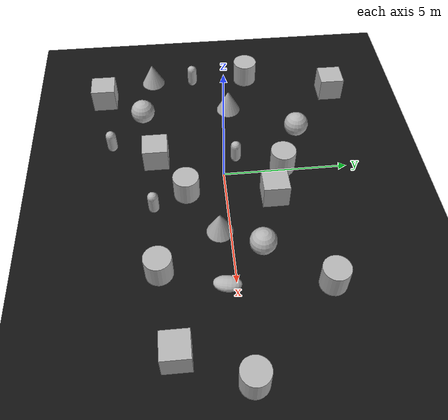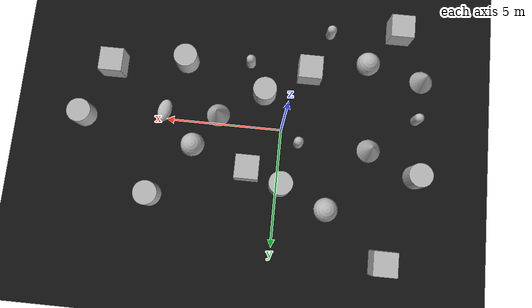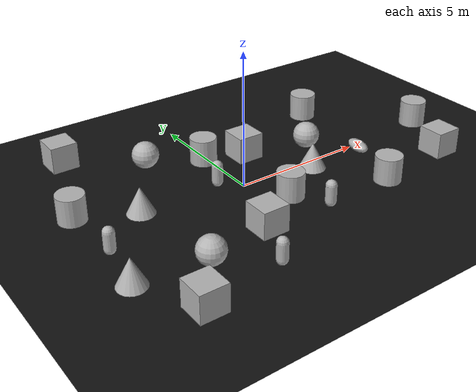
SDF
<sdf version='1.10'>
  <world name='easy'>
    <physics type='ode'>
      <max_step_size>0.0157999999999999997</max_step_size>
      <real_time_factor>2.1</real_time_factor>
      <real_time_update_rate>100</real_time_update_rate>
    </physics>
    <plugin name='gz::sim::systems::Physics' filename='gz-sim-physics-system'/>
    <plugin name='gz::sim::systems::UserCommands' filename='gz-sim-user-commands-system'/>
    <plugin name='gz::sim::systems::SceneBroadcaster' filename='gz-sim-scene-broadcaster-system'/>
    <plugin name='gz::sim::systems::Contact' filename='gz-sim-contact-system'/>
    <gravity>0 0 -9.8000000000000007</gravity>
    <magnetic_field>5.5644999999999998e-06 2.2875799999999999e-05 -4.2388400000000002e-05</magnetic_field>
    <atmosphere type='adiabatic'/>
    <scene>
      <ambient>0.400000006 0.400000006 0.400000006 1</ambient>
      <background>0 0 0 1</background>
      <shadows>true</shadows>

    </scene>
       <model name='ground_plane'>
      <static>true</static>
      <link name='link'>
        <collision name='collision'>
          <geometry>
            <plane>
              <normal>0 0 1</normal>
              <size>100 100</size>
            </plane>
          </geometry>
          <surface>
            <friction>
              <ode>
                <mu>0.6</mu>  <!-- Static friction (resistance to starting motion) -->
                <mu2>0.6</mu2> <!-- Dynamic friction (resistance while sliding) -->
              </ode>
            </friction>
            <bounce/>
            <contact/>
          </surface>
        </collision>
        <visual name='visual'>
          <geometry>
            <plane>
              <normal>0 0 1</normal>
              <size>100 100</size>
            </plane>
          </geometry>
          <material>
            <ambient>0.4 0.40 0.0 1</ambient>
            <diffuse>0.07
             0.07 0.07   1</diffuse>
            <specular>1.20000001e-08 1.20000001e-08 1.20000001e-08 1</specular>
          </material>
        </visual>
        <pose>0 0 0 0 0 0</pose>
        <inertial>
          <pose>0 0 0 0 0 0</pose>
          <mass>1</mass>
          <inertia>
            <ixx>1</ixx>
            <ixy>0</ixy>
            <ixz>0</ixz>
            <iyy>1</iyy>
            <iyz>0</iyz>
            <izz>1</izz>
          </inertia>
        </inertial>
        <enable_wind>true</enable_wind>
      </link>
      <pose>0 0 0 0 0 0</pose>
      <self_collide>false</self_collide>
    </model>

    <model name='box'>
      <pose>1.3079107751180743 1.8474021047232316 0.49999998732407236 1.7146562890227564e-19 -1.506965482464465e-19 2.6301188088606421e-20</pose>
      <link name='box_link'>
        <inertial>
          <inertia>
            <ixx>0.16666</ixx>
            <ixy>0</ixy>
            <ixz>0</ixz>
            <iyy>0.16666</iyy>
            <iyz>0</iyz>
            <izz>0.16666</izz>
          </inertia>
          <mass>1</mass>
          <pose>0 0 0 0 0 0</pose>
        </inertial>
        <collision name='box_collision'>
          <geometry>
            <box>
              <size>1 1 1</size>
            </box>
          </geometry>
          <surface>
            <friction>
              <ode/>
            </friction>
            <bounce/>
            <contact/>
          </surface>
        </collision>
        <visual name='box_visual'>
          <geometry>
            <box>
              <size>1 1 1</size>
            </box>
          </geometry>
          <material>
            <ambient>0.300000012 0.300000012 0.300000012 1</ambient>
            <diffuse>0.699999988 0.699999988 0.699999988 1</diffuse>
            <specular>1 1 1 1</specular>
          </material>
        </visual>
        <pose>0 0 0 0 0 0</pose>
        <enable_wind>false</enable_wind>
      </link>
      <static>false</static>
      <self_collide>false</self_collide>
    </model>
    <model name='sphere'>
      <pose>3.7021215504538665 1.0727905858347333 0.49999998732445367 0 0 0</pose>
      <link name='sphere_link'>
        <inertial>
          <inertia>
            <ixx>0.10000000000000001</ixx>
            <ixy>0</ixy>
            <ixz>0</ixz>
            <iyy>0.10000000000000001</iyy>
            <iyz>0</iyz>
            <izz>0.10000000000000001</izz>
          </inertia>
          <mass>1</mass>
          <pose>0 0 0 0 0 0</pose>
        </inertial>
        <collision name='sphere_collision'>
          <geometry>
            <sphere>
              <radius>0.5</radius>
            </sphere>
          </geometry>
          <surface>
            <friction>
              <ode/>
            </friction>
            <bounce/>
            <contact/>
          </surface>
        </collision>
        <visual name='sphere_visual'>
          <geometry>
            <sphere>
              <radius>0.5</radius>
            </sphere>
          </geometry>
          <material>
            <ambient>0.300000012 0.300000012 0.300000012 1</ambient>
            <diffuse>0.699999988 0.699999988 0.699999988 1</diffuse>
            <specular>1 1 1 1</specular>
          </material>
        </visual>
        <pose>0 0 0 0 0 0</pose>
        <enable_wind>false</enable_wind>
      </link>
      <static>false</static>
      <self_collide>false</self_collide>
    </model>
    <model name='cylinder'>
      <pose>4.3907817020895035 -2.6686401503549764 0.49999911236898065 -2.3291047202423558e-17 4.7050937158339428e-18 -1.9214936821828784e-18</pose>
      <link name='cylinder_link'>
        <inertial>
          <inertia>
            <ixx>0.14580000000000001</ixx>
            <ixy>0</ixy>
            <ixz>0</ixz>
            <iyy>0.14580000000000001</iyy>
            <iyz>0</iyz>
            <izz>0.125</izz>
          </inertia>
          <mass>1</mass>
          <pose>0 0 0 0 0 0</pose>
        </inertial>
        <collision name='cylinder_collision'>
          <geometry>
            <cylinder>
              <radius>0.5</radius>
              <length>1</length>
            </cylinder>
          </geometry>
          <surface>
            <friction>
              <ode/>
            </friction>
            <bounce/>
            <contact/>
          </surface>
        </collision>
        <visual name='cylinder_visual'>
          <geometry>
            <cylinder>
              <radius>0.5</radius>
              <length>1</length>
            </cylinder>
          </geometry>
          <material>
            <ambient>0.300000012 0.300000012 0.300000012 1</ambient>
            <diffuse>0.699999988 0.699999988 0.699999988 1</diffuse>
            <specular>1 1 1 1</specular>
          </material>
        </visual>
        <pose>0 0 0 0 0 0</pose>
        <enable_wind>false</enable_wind>
      </link>
      <static>false</static>
      <self_collide>false</self_collide>
    </model>
    <model name='ellipsoid'>
      <pose>5.1194750756929279 -0.3455733223157994 0.18666812544815412 1.570796618675355 -1.3774934304145805 -0.17749287012612883</pose>
      <link name='ellipsoid_link'>
        <inertial>
          <inertia>
            <ixx>0.068000000000000005</ixx>
            <ixy>0</ixy>
            <ixz>0</ixz>
            <iyy>0.058000000000000003</iyy>
            <iyz>0</iyz>
            <izz>0.025999999999999999</izz>
          </inertia>
          <mass>1</mass>
          <pose>0 0 0 0 0 0</pose>
        </inertial>
        <collision name='ellipsoid_collision'>
          <geometry>
            <ellipsoid>
              <radii>0.20000000000000001 0.29999999999999999 0.5</radii>
            </ellipsoid>
          </geometry>
          <surface>
            <friction>
              <ode/>
            </friction>
            <bounce/>
            <contact/>
          </surface>
        </collision>
        <visual name='ellipsoid_visual'>
          <geometry>
            <ellipsoid>
              <radii>0.20000000000000001 0.29999999999999999 0.5</radii>
            </ellipsoid>
          </geometry>
          <material>
            <ambient>0.300000012 0.300000012 0.300000012 1</ambient>
            <diffuse>0.699999988 0.699999988 0.699999988 1</diffuse>
            <specular>1 1 1 1</specular>
          </material>
        </visual>
        <pose>0 0 0 0 0 0</pose>
        <enable_wind>false</enable_wind>
      </link>
      <static>false</static>
      <self_collide>false</self_collide>
    </model>
    <model name='cylinder_0'>
      <pose>5.3421719748224907 3.3061345768307588 0.49999911236898065 5.1727030899499937e-18 -1.5737135237016078e-17 -2.6054104247803735e-18</pose>
      <link name='cylinder_link'>
        <inertial>
          <inertia>
            <ixx>0.14580000000000001</ixx>
            <ixy>0</ixy>
            <ixz>0</ixz>
            <iyy>0.14580000000000001</iyy>
            <iyz>0</iyz>
            <izz>0.125</izz>
          </inertia>
          <mass>1</mass>
          <pose>0 0 0 0 0 0</pose>
        </inertial>
        <collision name='cylinder_collision'>
          <geometry>
            <cylinder>
              <radius>0.5</radius>
              <length>1</length>
            </cylinder>
          </geometry>
          <surface>
            <friction>
              <ode/>
            </friction>
            <bounce/>
            <contact/>
          </surface>
        </collision>
        <visual name='cylinder_visual'>
          <geometry>
            <cylinder>
              <radius>0.5</radius>
              <length>1</length>
            </cylinder>
          </geometry>
          <material>
            <ambient>0.300000012 0.300000012 0.300000012 1</ambient>
            <diffuse>0.699999988 0.699999988 0.699999988 1</diffuse>
            <specular>1 1 1 1</specular>
          </material>
        </visual>
        <pose>0 0 0 0 0 0</pose>
        <enable_wind>false</enable_wind>
      </link>
      <static>false</static>
      <self_collide>false</self_collide>
    </model>
    <model name='cone'>
      <pose>2.7905159739724841 -0.39996895939134475 0.49999999653026223 4.6976304624339573e-10 -3.2970063802882705e-08 2.9944349020114418e-15</pose>
      <link name='cone_link'>
        <inertial>
          <inertia>
            <ixx>0.074999999999999997</ixx>
            <ixy>0</ixy>
            <ixz>0</ixz>
            <iyy>0.074999999999999997</iyy>
            <iyz>0</iyz>
            <izz>0.074999999999999997</izz>
          </inertia>
          <mass>1</mass>
          <pose>0 0 0 0 0 0</pose>
        </inertial>
        <collision name='cone_collision'>
          <geometry>
            <cone>
              <radius>0.5</radius>
              <length>1</length>
            </cone>
          </geometry>
          <surface>
            <friction>
              <ode/>
            </friction>
            <bounce/>
            <contact/>
          </surface>
        </collision>
        <visual name='cone_visual'>
          <geometry>
            <cone>
              <radius>0.5</radius>
              <length>1</length>
            </cone>
          </geometry>
          <material>
            <ambient>0.300000012 0.300000012 0.300000012 1</ambient>
            <diffuse>0.699999988 0.699999988 0.699999988 1</diffuse>
            <specular>1 1 1 1</specular>
          </material>
        </visual>
        <pose>0 0 0 0 0 0</pose>
        <enable_wind>false</enable_wind>
      </link>
      <static>false</static>
      <self_collide>false</self_collide>
    </model>
    <model name='cylinder_1'>
      <pose>8.5631545333299695 0.15519504337068835 0.49999911236898065 1.4619803052156845e-17 -1.3604877339283727e-19 -6.556471039763676e-19</pose>
      <link name='cylinder_link'>
        <inertial>
          <inertia>
            <ixx>0.14580000000000001</ixx>
            <ixy>0</ixy>
            <ixz>0</ixz>
            <iyy>0.14580000000000001</iyy>
            <iyz>0</iyz>
            <izz>0.125</izz>
          </inertia>
          <mass>1</mass>
          <pose>0 0 0 0 0 0</pose>
        </inertial>
        <collision name='cylinder_collision'>
          <geometry>
            <cylinder>
              <radius>0.5</radius>
              <length>1</length>
            </cylinder>
          </geometry>
          <surface>
            <friction>
              <ode/>
            </friction>
            <bounce/>
            <contact/>
          </surface>
        </collision>
        <visual name='cylinder_visual'>
          <geometry>
            <cylinder>
              <radius>0.5</radius>
              <length>1</length>
            </cylinder>
          </geometry>
          <material>
            <ambient>0.300000012 0.300000012 0.300000012 1</ambient>
            <diffuse>0.699999988 0.699999988 0.699999988 1</diffuse>
            <specular>1 1 1 1</specular>
          </material>
        </visual>
        <pose>0 0 0 0 0 0</pose>
        <enable_wind>false</enable_wind>
      </link>
      <static>false</static>
      <self_collide>false</self_collide>
    </model>
    <model name='box_0'>
      <pose>7.5245301484741862 -2.1862916393523077 0.49999998732407236 1.7146562890227564e-19 -1.506965482464465e-19 2.6301188088606421e-20</pose>
      <link name='box_link'>
        <inertial>
          <inertia>
            <ixx>0.16666</ixx>
            <ixy>0</ixy>
            <ixz>0</ixz>
            <iyy>0.16666</iyy>
            <iyz>0</iyz>
            <izz>0.16666</izz>
          </inertia>
          <mass>1</mass>
          <pose>0 0 0 0 0 0</pose>
        </inertial>
        <collision name='box_collision'>
          <geometry>
            <box>
              <size>1 1 1</size>
            </box>
          </geometry>
          <surface>
            <friction>
              <ode/>
            </friction>
            <bounce/>
            <contact/>
          </surface>
        </collision>
        <visual name='box_visual'>
          <geometry>
            <box>
              <size>1 1 1</size>
            </box>
          </geometry>
          <material>
            <ambient>0.300000012 0.300000012 0.300000012 1</ambient>
            <diffuse>0.699999988 0.699999988 0.699999988 1</diffuse>
            <specular>1 1 1 1</specular>
          </material>
        </visual>
        <pose>0 0 0 0 0 0</pose>
        <enable_wind>false</enable_wind>
      </link>
      <static>false</static>
      <self_collide>false</self_collide>
    </model>
    <model name='capsule'>
      <pose>1.5828241716722355 -2.8048582904416484 0.49999998732445361 0 0 0</pose>
      <link name='capsule_link'>
        <inertial>
          <inertia>
            <ixx>0.074153999999999998</ixx>
            <ixy>0</ixy>
            <ixz>0</ixz>
            <iyy>0.074153999999999998</iyy>
            <iyz>0</iyz>
            <izz>0.018769000000000001</izz>
          </inertia>
          <mass>1</mass>
          <pose>0 0 0 0 0 0</pose>
        </inertial>
        <collision name='capsule_collision'>
          <geometry>
            <capsule>
              <radius>0.20000000000000001</radius>
              <length>0.59999999999999998</length>
            </capsule>
          </geometry>
          <surface>
            <friction>
              <ode/>
            </friction>
            <bounce/>
            <contact/>
          </surface>
        </collision>
        <visual name='capsule_visual'>
          <geometry>
            <capsule>
              <radius>0.20000000000000001</radius>
              <length>0.59999999999999998</length>
            </capsule>
          </geometry>
          <material>
            <ambient>0.300000012 0.300000012 0.300000012 1</ambient>
            <diffuse>0.699999988 0.699999988 0.699999988 1</diffuse>
            <specular>1 1 1 1</specular>
          </material>
        </visual>
        <pose>0 0 0 0 0 0</pose>
        <enable_wind>false</enable_wind>
      </link>
      <static>false</static>
      <self_collide>false</self_collide>
    </model>

    <model name='cylinder_2'>
      <pose>-0.15154525190620127 2.3857357095769443 0.49999953833888544 1.097724632006874e-16 5.549339413029207e-17 -4.0929605722636649e-20</pose>
      <link name='cylinder_link'>
        <inertial>
          <inertia>
            <ixx>0.14580000000000001</ixx>
            <ixy>0</ixy>
            <ixz>0</ixz>
            <iyy>0.14580000000000001</iyy>
            <iyz>0</iyz>
            <izz>0.125</izz>
          </inertia>
          <mass>1</mass>
          <pose>0 0 0 0 0 0</pose>
        </inertial>
        <collision name='cylinder_collision'>
          <geometry>
            <cylinder>
              <radius>0.5</radius>
              <length>1</length>
            </cylinder>
          </geometry>
          <surface>
            <friction>
              <ode/>
            </friction>
            <bounce/>
            <contact/>
          </surface>
        </collision>
        <visual name='cylinder_visual'>
          <geometry>
            <cylinder>
              <radius>0.5</radius>
              <length>1</length>
            </cylinder>
          </geometry>
          <material>
            <ambient>0.300000012 0.300000012 0.300000012 1</ambient>
            <diffuse>0.699999988 0.699999988 0.699999988 1</diffuse>
            <specular>1 1 1 1</specular>
          </material>
        </visual>
        <pose>0 0 0 0 0 0</pose>
        <enable_wind>false</enable_wind>
      </link>
      <static>false</static>
      <self_collide>false</self_collide>
    </model>
    <model name='sphere_0'>
      <pose>-2.1092688067353786 3.2615498821317548 0.49999999058817413 0 0 0</pose>
      <link name='sphere_link'>
        <inertial>
          <inertia>
            <ixx>0.10000000000000001</ixx>
            <ixy>0</ixy>
            <ixz>0</ixz>
            <iyy>0.10000000000000001</iyy>
            <iyz>0</iyz>
            <izz>0.10000000000000001</izz>
          </inertia>
          <mass>1</mass>
          <pose>0 0 0 0 0 0</pose>
        </inertial>
        <collision name='sphere_collision'>
          <geometry>
            <sphere>
              <radius>0.5</radius>
            </sphere>
          </geometry>
          <surface>
            <friction>
              <ode/>
            </friction>
            <bounce/>
            <contact/>
          </surface>
        </collision>
        <visual name='sphere_visual'>
          <geometry>
            <sphere>
              <radius>0.5</radius>
            </sphere>
          </geometry>
          <material>
            <ambient>0.300000012 0.300000012 0.300000012 1</ambient>
            <diffuse>0.699999988 0.699999988 0.699999988 1</diffuse>
            <specular>1 1 1 1</specular>
          </material>
        </visual>
        <pose>0 0 0 0 0 0</pose>
        <enable_wind>false</enable_wind>
      </link>
      <static>false</static>
      <self_collide>false</self_collide>
    </model>
    <model name='box_1'>
      <pose>-0.99688328788663094 -2.677461782100977 0.49999999058789174 1.4013490805452718e-19 -7.6019599516725148e-20 3.1662818921780231e-20</pose>
      <link name='box_link'>
        <inertial>
          <inertia>
            <ixx>0.16666</ixx>
            <ixy>0</ixy>
            <ixz>0</ixz>
            <iyy>0.16666</iyy>
            <iyz>0</iyz>
            <izz>0.16666</izz>
          </inertia>
          <mass>1</mass>
          <pose>0 0 0 0 0 0</pose>
        </inertial>
        <collision name='box_collision'>
          <geometry>
            <box>
              <size>1 1 1</size>
            </box>
          </geometry>
          <surface>
            <friction>
              <ode/>
            </friction>
            <bounce/>
            <contact/>
          </surface>
        </collision>
        <visual name='box_visual'>
          <geometry>
            <box>
              <size>1 1 1</size>
            </box>
          </geometry>
          <material>
            <ambient>0.300000012 0.300000012 0.300000012 1</ambient>
            <diffuse>0.699999988 0.699999988 0.699999988 1</diffuse>
            <specular>1 1 1 1</specular>
          </material>
        </visual>
        <pose>0 0 0 0 0 0</pose>
        <enable_wind>false</enable_wind>
      </link>
      <static>false</static>
      <self_collide>false</self_collide>
    </model>
    <model name='capsule_0'>
      <pose>-0.75429089509761571 0.55585338226742165 0.49999999058817413 0 0 0</pose>
      <link name='capsule_link'>
        <inertial>
          <inertia>
            <ixx>0.074153999999999998</ixx>
            <ixy>0</ixy>
            <ixz>0</ixz>
            <iyy>0.074153999999999998</iyy>
            <iyz>0</iyz>
            <izz>0.018769000000000001</izz>
          </inertia>
          <mass>1</mass>
          <pose>0 0 0 0 0 0</pose>
        </inertial>
        <collision name='capsule_collision'>
          <geometry>
            <capsule>
              <radius>0.20000000000000001</radius>
              <length>0.59999999999999998</length>
            </capsule>
          </geometry>
          <surface>
            <friction>
              <ode/>
            </friction>
            <bounce/>
            <contact/>
          </surface>
        </collision>
        <visual name='capsule_visual'>
          <geometry>
            <capsule>
              <radius>0.20000000000000001</radius>
              <length>0.59999999999999998</length>
            </capsule>
          </geometry>
          <material>
            <ambient>0.300000012 0.300000012 0.300000012 1</ambient>
            <diffuse>0.699999988 0.699999988 0.699999988 1</diffuse>
            <specular>1 1 1 1</specular>
          </material>
        </visual>
        <pose>0 0 0 0 0 0</pose>
        <enable_wind>false</enable_wind>
      </link>
      <static>false</static>
      <self_collide>false</self_collide>
    </model>
    <model name='cylinder_3'>
      <pose>0.86627457237803707 -1.5311999369663607 0.49999953833888544 6.1076051968070297e-18 -2.2106114398590322e-17 -6.7399665615232903e-18</pose>
      <link name='cylinder_link'>
        <inertial>
          <inertia>
            <ixx>0.14580000000000001</ixx>
            <ixy>0</ixy>
            <ixz>0</ixz>
            <iyy>0.14580000000000001</iyy>
            <iyz>0</iyz>
            <izz>0.125</izz>
          </inertia>
          <mass>1</mass>
          <pose>0 0 0 0 0 0</pose>
        </inertial>
        <collision name='cylinder_collision'>
          <geometry>
            <cylinder>
              <radius>0.5</radius>
              <length>1</length>
            </cylinder>
          </geometry>
          <surface>
            <friction>
              <ode/>
            </friction>
            <bounce/>
            <contact/>
          </surface>
        </collision>
        <visual name='cylinder_visual'>
          <geometry>
            <cylinder>
              <radius>0.5</radius>
              <length>1</length>
            </cylinder>
          </geometry>
          <material>
            <ambient>0.300000012 0.300000012 0.300000012 1</ambient>
            <diffuse>0.699999988 0.699999988 0.699999988 1</diffuse>
            <specular>1 1 1 1</specular>
          </material>
        </visual>
        <pose>0 0 0 0 0 0</pose>
        <enable_wind>false</enable_wind>
      </link>
      <static>false</static>
      <self_collide>false</self_collide>
    </model>
    <model name='cone_0'>
      <pose>-3.8234345110820813 0.5459588568801147 0.49999999356220476 5.0465866881829264e-15 -7.4078380535185048e-08 -1.3521384982233992e-20</pose>
      <link name='cone_link'>
        <inertial>
          <inertia>
            <ixx>0.074999999999999997</ixx>
            <ixy>0</ixy>
            <ixz>0</ixz>
            <iyy>0.074999999999999997</iyy>
            <iyz>0</iyz>
            <izz>0.074999999999999997</izz>
          </inertia>
          <mass>1</mass>
          <pose>0 0 0 0 0 0</pose>
        </inertial>
        <collision name='cone_collision'>
          <geometry>
            <cone>
              <radius>0.5</radius>
              <length>1</length>
            </cone>
          </geometry>
          <surface>
            <friction>
              <ode/>
            </friction>
            <bounce/>
            <contact/>
          </surface>
        </collision>
        <visual name='cone_visual'>
          <geometry>
            <cone>
              <radius>0.5</radius>
              <length>1</length>
            </cone>
          </geometry>
          <material>
            <ambient>0.300000012 0.300000012 0.300000012 1</ambient>
            <diffuse>0.699999988 0.699999988 0.699999988 1</diffuse>
            <specular>1 1 1 1</specular>
          </material>
        </visual>
        <pose>0 0 0 0 0 0</pose>
        <enable_wind>false</enable_wind>
      </link>
      <static>false</static>
      <self_collide>false</self_collide>
    </model>
    <model name='box_2'>
      <pose>-4.5987479105676616 5.2051767944775769 0.49999999058789174 1.4013490805452718e-19 -7.6019599516725148e-20 3.1662818921780231e-20</pose>
      <link name='box_link'>
        <inertial>
          <inertia>
            <ixx>0.16666</ixx>
            <ixy>0</ixy>
            <ixz>0</ixz>
            <iyy>0.16666</iyy>
            <iyz>0</iyz>
            <izz>0.16666</izz>
          </inertia>
          <mass>1</mass>
          <pose>0 0 0 0 0 0</pose>
        </inertial>
        <collision name='box_collision'>
          <geometry>
            <box>
              <size>1 1 1</size>
            </box>
          </geometry>
          <surface>
            <friction>
              <ode/>
            </friction>
            <bounce/>
            <contact/>
          </surface>
        </collision>
        <visual name='box_visual'>
          <geometry>
            <box>
              <size>1 1 1</size>
            </box>
          </geometry>
          <material>
            <ambient>0.300000012 0.300000012 0.300000012 1</ambient>
            <diffuse>0.699999988 0.699999988 0.699999988 1</diffuse>
            <specular>1 1 1 1</specular>
          </material>
        </visual>
        <pose>0 0 0 0 0 0</pose>
        <enable_wind>false</enable_wind>
      </link>
      <static>false</static>
      <self_collide>false</self_collide>
    </model>
    <model name='sphere_1'>
      <pose>-3.4863787630929828 -3.1913129211673508 0.49999999058817413 0 0 0</pose>
      <link name='sphere_link'>
        <inertial>
          <inertia>
            <ixx>0.10000000000000001</ixx>
            <ixy>0</ixy>
            <ixz>0</ixz>
            <iyy>0.10000000000000001</iyy>
            <iyz>0</iyz>
            <izz>0.10000000000000001</izz>
          </inertia>
          <mass>1</mass>
          <pose>0 0 0 0 0 0</pose>
        </inertial>
        <collision name='sphere_collision'>
          <geometry>
            <sphere>
              <radius>0.5</radius>
            </sphere>
          </geometry>
          <surface>
            <friction>
              <ode/>
            </friction>
            <bounce/>
            <contact/>
          </surface>
        </collision>
        <visual name='sphere_visual'>
          <geometry>
            <sphere>
              <radius>0.5</radius>
            </sphere>
          </geometry>
          <material>
            <ambient>0.300000012 0.300000012 0.300000012 1</ambient>
            <diffuse>0.699999988 0.699999988 0.699999988 1</diffuse>
            <specular>1 1 1 1</specular>
          </material>
        </visual>
        <pose>0 0 0 0 0 0</pose>
        <enable_wind>false</enable_wind>
      </link>
      <static>false</static>
      <self_collide>false</self_collide>
    </model>
    <model name='cylinder_4'>
      <pose>-5.8500768972754091 1.4996177663754744 0.49999953833888544 2.5100336174960856e-17 -5.5845034601087195e-17 -2.6804197595069075e-18</pose>
      <link name='cylinder_link'>
        <inertial>
          <inertia>
            <ixx>0.14580000000000001</ixx>
            <ixy>0</ixy>
            <ixz>0</ixz>
            <iyy>0.14580000000000001</iyy>
            <iyz>0</iyz>
            <izz>0.125</izz>
          </inertia>
          <mass>1</mass>
          <pose>0 0 0 0 0 0</pose>
        </inertial>
        <collision name='cylinder_collision'>
          <geometry>
            <cylinder>
              <radius>0.5</radius>
              <length>1</length>
            </cylinder>
          </geometry>
          <surface>
            <friction>
              <ode/>
            </friction>
            <bounce/>
            <contact/>
          </surface>
        </collision>
        <visual name='cylinder_visual'>
          <geometry>
            <cylinder>
              <radius>0.5</radius>
              <length>1</length>
            </cylinder>
          </geometry>
          <material>
            <ambient>0.300000012 0.300000012 0.300000012 1</ambient>
            <diffuse>0.699999988 0.699999988 0.699999988 1</diffuse>
            <specular>1 1 1 1</specular>
          </material>
        </visual>
        <pose>0 0 0 0 0 0</pose>
        <enable_wind>false</enable_wind>
      </link>
      <static>false</static>
      <self_collide>false</self_collide>
    </model>
    <model name='cone_1'>
      <pose>-5.9512079819479071 -2.7431600965589 0.49999999356220476 5.046792837717911e-15 -7.4078380532683415e-08 1.0983682656412343e-21</pose>
      <link name='cone_link'>
        <inertial>
          <inertia>
            <ixx>0.074999999999999997</ixx>
            <ixy>0</ixy>
            <ixz>0</ixz>
            <iyy>0.074999999999999997</iyy>
            <iyz>0</iyz>
            <izz>0.074999999999999997</izz>
          </inertia>
          <mass>1</mass>
          <pose>0 0 0 0 0 0</pose>
        </inertial>
        <collision name='cone_collision'>
          <geometry>
            <cone>
              <radius>0.5</radius>
              <length>1</length>
            </cone>
          </geometry>
          <surface>
            <friction>
              <ode/>
            </friction>
            <bounce/>
            <contact/>
          </surface>
        </collision>
        <visual name='cone_visual'>
          <geometry>
            <cone>
              <radius>0.5</radius>
              <length>1</length>
            </cone>
          </geometry>
          <material>
            <ambient>0.300000012 0.300000012 0.300000012 1</ambient>
            <diffuse>0.699999988 0.699999988 0.699999988 1</diffuse>
            <specular>1 1 1 1</specular>
          </material>
        </visual>
        <pose>0 0 0 0 0 0</pose>
        <enable_wind>false</enable_wind>
      </link>
      <static>false</static>
      <self_collide>false</self_collide>
    </model>
    <model name='capsule_1'>
      <pose>-5.7180600990209864 -0.93544746423693037 0.49999999058817413 0 0 0</pose>
      <link name='capsule_link'>
        <inertial>
          <inertia>
            <ixx>0.074153999999999998</ixx>
            <ixy>0</ixy>
            <ixz>0</ixz>
            <iyy>0.074153999999999998</iyy>
            <iyz>0</iyz>
            <izz>0.018769000000000001</izz>
          </inertia>
          <mass>1</mass>
          <pose>0 0 0 0 0 0</pose>
        </inertial>
        <collision name='capsule_collision'>
          <geometry>
            <capsule>
              <radius>0.20000000000000001</radius>
              <length>0.59999999999999998</length>
            </capsule>
          </geometry>
          <surface>
            <friction>
              <ode/>
            </friction>
            <bounce/>
            <contact/>
          </surface>
        </collision>
        <visual name='capsule_visual'>
          <geometry>
            <capsule>
              <radius>0.20000000000000001</radius>
              <length>0.59999999999999998</length>
            </capsule>
          </geometry>
          <material>
            <ambient>0.300000012 0.300000012 0.300000012 1</ambient>
            <diffuse>0.699999988 0.699999988 0.699999988 1</diffuse>
            <specular>1 1 1 1</specular>
          </material>
        </visual>
        <pose>0 0 0 0 0 0</pose>
        <enable_wind>false</enable_wind>
      </link>
      <static>false</static>
      <self_collide>false</self_collide>
    </model>
    <model name='capsule_2'>
      <pose>-1.7916765021648922 -4.4700046489869809 0.49999999058817413 0 0 0</pose>
      <link name='capsule_link'>
        <inertial>
          <inertia>
            <ixx>0.074153999999999998</ixx>
            <ixy>0</ixy>
            <ixz>0</ixz>
            <iyy>0.074153999999999998</iyy>
            <iyz>0</iyz>
            <izz>0.018769000000000001</izz>
          </inertia>
          <mass>1</mass>
          <pose>0 0 0 0 0 0</pose>
        </inertial>
        <collision name='capsule_collision'>
          <geometry>
            <capsule>
              <radius>0.20000000000000001</radius>
              <length>0.59999999999999998</length>
            </capsule>
          </geometry>
          <surface>
            <friction>
              <ode/>
            </friction>
            <bounce/>
            <contact/>
          </surface>
        </collision>
        <visual name='capsule_visual'>
          <geometry>
            <capsule>
              <radius>0.20000000000000001</radius>
              <length>0.59999999999999998</length>
            </capsule>
          </geometry>
          <material>
            <ambient>0.300000012 0.300000012 0.300000012 1</ambient>
            <diffuse>0.699999988 0.699999988 0.699999988 1</diffuse>
            <specular>1 1 1 1</specular>
          </material>
        </visual>
        <pose>0 0 0 0 0 0</pose>
        <enable_wind>false</enable_wind>
      </link>
      <static>false</static>
      <self_collide>false</self_collide>
    </model>
    <model name='box_3'>
      <pose>-4.8033844385732367 -4.8785247809547068 0.49999999058789174 1.4013490805452718e-19 -7.6019599516725148e-20 3.1662818921780231e-20</pose>
      <link name='box_link'>
        <inertial>
          <inertia>
            <ixx>0.16666</ixx>
            <ixy>0</ixy>
            <ixz>0</ixz>
            <iyy>0.16666</iyy>
            <iyz>0</iyz>
            <izz>0.16666</izz>
          </inertia>
          <mass>1</mass>
          <pose>0 0 0 0 0 0</pose>
        </inertial>
        <collision name='box_collision'>
          <geometry>
            <box>
              <size>1 1 1</size>
            </box>
          </geometry>
          <surface>
            <friction>
              <ode/>
            </friction>
            <bounce/>
            <contact/>
          </surface>
        </collision>
        <visual name='box_visual'>
          <geometry>
            <box>
              <size>1 1 1</size>
            </box>
          </geometry>
          <material>
            <ambient>0.300000012 0.300000012 0.300000012 1</ambient>
            <diffuse>0.699999988 0.699999988 0.699999988 1</diffuse>
            <specular>1 1 1 1</specular>
          </material>
        </visual>
        <pose>0 0 0 0 0 0</pose>
        <enable_wind>false</enable_wind>
      </link>
      <static>false</static>
      <self_collide>false</self_collide>
    </model>
    <light name='sun' type='directional'>
      <pose>0 0 10 0 0 0</pose>
      <cast_shadows>true</cast_shadows>
      <intensity>1</intensity>
      <direction>-0.5 0.10000000000000001 -0.90000000000000002</direction>
      <diffuse>0.400000012 0.500000012 0.500000012 1</diffuse>
      <specular>0.200000003 0.200000003 0.200000003 1</specular>
      <attenuation>
        <range>100</range>
        <linear>0.01</linear>
        <constant>0.90000000000000002</constant>
        <quadratic>0.001</quadratic>
      </attenuation>
      <spot>
        <inner_angle>0</inner_angle>
        <outer_angle>0</outer_angle>
        <falloff>0</falloff>
      </spot>
    </light>
  </world>
</sdf>
